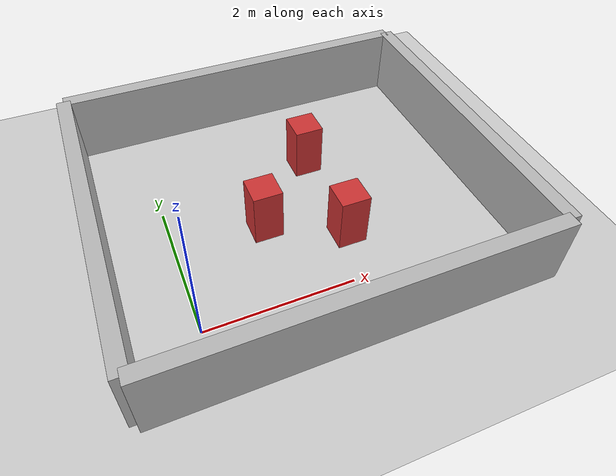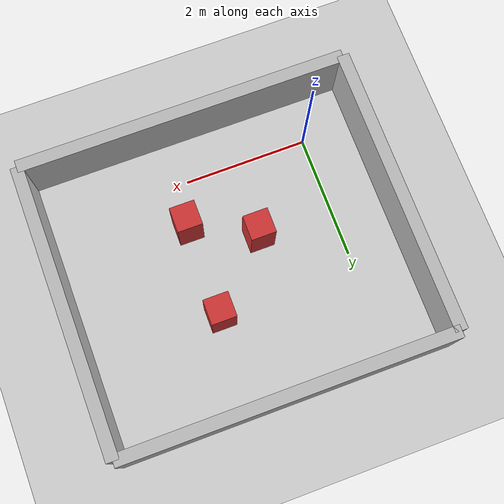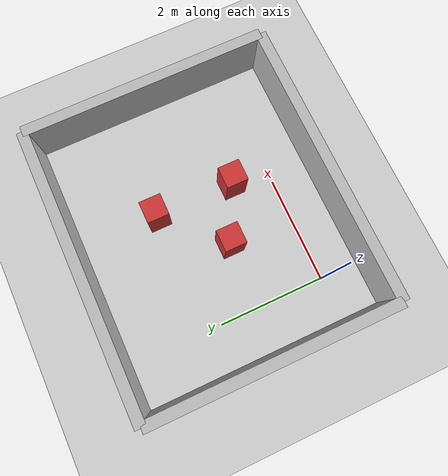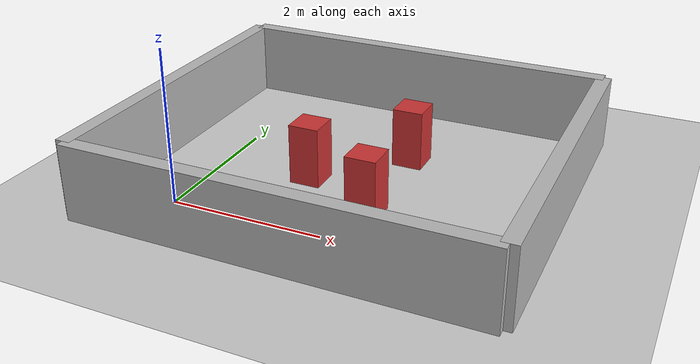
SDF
<sdf version="1.8">
 <world name="demo">
  <plugin filename="gz-sim-physics-system" name="gz::sim::systems::Physics"/>
  <plugin filename="gz-sim-sensors-system" name="gz::sim::systems::Sensors">
   <render_engine>ogre2</render_engine>
  </plugin>
  <plugin filename="gz-sim-scene-broadcaster-system" name="gz::sim::systems::SceneBroadcaster"/>
  <plugin filename="gz-sim-user-commands-system" name="gz::sim::systems::UserCommands"/>
  <light name="sun" type="directional">
   <pose>0 0 10 0 0 0</pose>
   <diffuse>0.8 0.8 0.8 1</diffuse>
   <specular>0.2 0.2 0.2 1</specular>
   <attenuation>
    <range>1000</range>
    <constant>0.9</constant>
    <linear>0.01</linear>
    <quadratic>0.001</quadratic>
   </attenuation>
   <direction>-0.5 0.1 -0.9</direction>
  </light>
  <model name="ground_plane">
   <static>true</static>
   <link name="link">
    <collision name="collision">
     <geometry><plane><normal>0 0 1</normal><size>100 100</size></plane></geometry>
    </collision>
    <visual name="visual">
     <geometry><plane><normal>0 0 1</normal><size>100 100</size></plane></geometry>
     <material>
      <ambient>0.8 0.8 0.8 1</ambient>
      <diffuse>0.8 0.8 0.8 1</diffuse>
      <specular>0.8 0.8 0.8 1</specular>
     </material>
    </visual>
   </link>
  </model>
  <model name="wall1">
   <pose>4.4 1.5 0.5 0 0 0</pose>
   <static>true</static>
   <link name="link"><visual name="visual"><geometry><box><size>0.2 4.6 1</size></box></geometry></visual></link>
  </model>
  <model name="wall2">
   <pose>-0.9 1.5 0.5 0 0 0</pose>
   <static>true</static>
   <link name="link"><visual name="visual"><geometry><box><size>0.2 4.6 1</size></box></geometry></visual></link>
  </model>
  <model name="wall3">
   <pose>1.75 3.8 0.5 0 0 1.57</pose>
   <static>true</static>
   <link name="link"><visual name="visual"><geometry><box><size>0.2 5.3 1</size></box></geometry></visual></link>
  </model>
  <model name="wall4">
   <pose>1.75 -0.8 0.5 0 0 1.57</pose>
   <static>true</static>
   <link name="link"><visual name="visual"><geometry><box><size>0.2 5.3 1</size></box></geometry></visual></link>
  </model>
  <model name="obstacle_1">
   <pose>1.25 1.25 0.4 0 0 0</pose>
   <static>true</static>
   <link name="link">
    <collision name="collision"><geometry><box><size>0.4 0.4 0.8</size></box></geometry></collision>
    <visual name="visual">
     <geometry><box><size>0.4 0.4 0.8</size></box></geometry>
     <material><ambient>0.8 0.2 0.2 1</ambient><diffuse>0.8 0.2 0.2 1</diffuse></material>
    </visual>
   </link>
  </model>
  <model name="obstacle_2">
   <pose>2.25 0.75 0.4 0 0 0</pose>
   <static>true</static>
   <link name="link">
    <collision name="collision"><geometry><box><size>0.4 0.4 0.8</size></box></geometry></collision>
    <visual name="visual">
     <geometry><box><size>0.4 0.4 0.8</size></box></geometry>
     <material><ambient>0.8 0.2 0.2 1</ambient><diffuse>0.8 0.2 0.2 1</diffuse></material>
    </visual>
   </link>
  </model>
  <model name="obstacle_3">
   <pose>2.25 2.25 0.4 0 0 0</pose>
   <static>true</static>
   <link name="link">
    <collision name="collision"><geometry><box><size>0.4 0.4 0.8</size></box></geometry></collision>
    <visual name="visual">
     <geometry><box><size>0.4 0.4 0.8</size></box></geometry>
     <material><ambient>0.8 0.2 0.2 1</ambient><diffuse>0.8 0.2 0.2 1</diffuse></material>
    </visual>
   </link>
  </model>
 </world>
</sdf>
